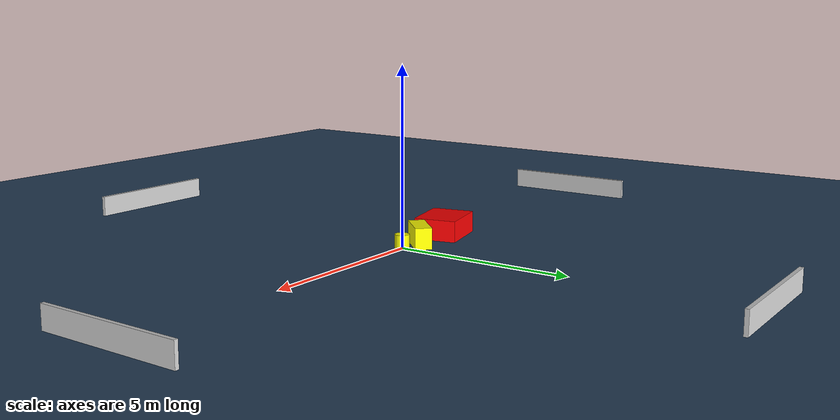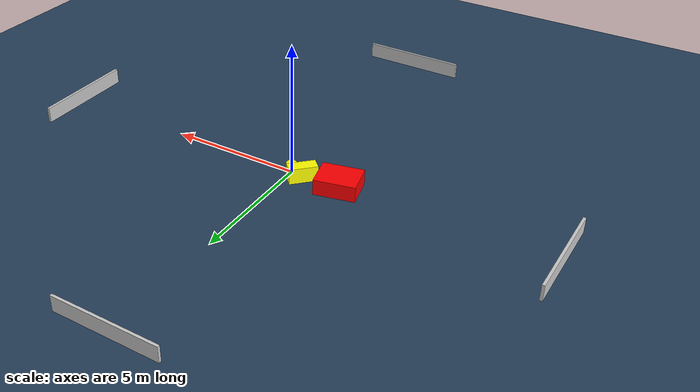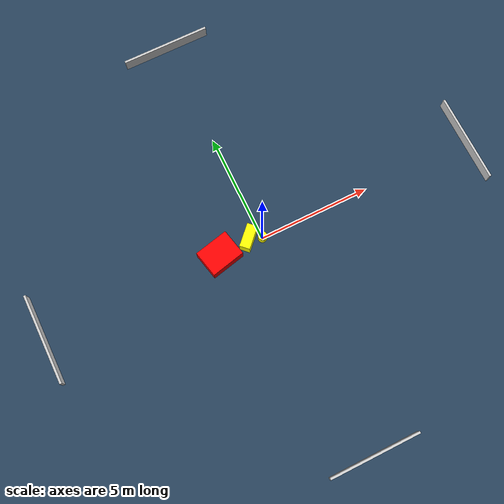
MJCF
<?xml version="1.0" ?>
<mujoco model="generated_environment">
  <option timestep="0.01" integrator="RK4" cone="elliptic"/>
  <default>
    <geom density="1"/>
  </default>
  <asset>
    <texture builtin="gradient" height="3072" name="skybox" rgb1="0.3 0.5 0.7" rgb2="0 0 0" type="skybox" width="512"/>
    <texture builtin="checker" height="300" name="groundplane" rgb1="0.2 0.3 0.4" rgb2="0.1 0.2 0.3" type="2d" width="300"/>
    <material name="groundplane" reflectance="0.2" texrepeat="5 5" texture="groundplane"/>
  </asset>
  <worldbody>
    <light dir="0 0 -1" directional="true" pos="0 0 1.5"/>
    <geom condim="3" friction="0.5 0.005 0.001" material="groundplane" name="floor" pos="0 0 0" size="0 0 0.05" type="plane"/>
    <body name="walls">
      <geom name="wall_1" condim="4" pos="-10.0 0.0 0.3" rgba="0.800000011920929 0.800000011920929 0.800000011920929 1.0" size="0.05 2.0 0.3" type="box"/>
      <geom name="wall_2" condim="4" pos="10.0 0.0 0.3" rgba="0.800000011920929 0.800000011920929 0.800000011920929 1.0" size="0.05 2.0 0.3" type="box"/>
      <geom name="wall_3" condim="4" pos="0.0 -10.0 0.3" rgba="0.800000011920929 0.800000011920929 0.800000011920929 1.0" size="2.0 0.05 0.3" type="box"/>
      <geom name="wall_4" condim="4" pos="0.0 10.0 0.3" rgba="0.800000011920929 0.800000011920929 0.800000011920929 1.0" size="2.0 0.05 0.3" type="box"/>
    </body>
    <body name="robot">
      <joint name="joint_x" type="slide" pos="0 0 0" axis="1 0 0"/>
      <joint name="joint_y" type="slide" pos="0 0 0" axis="0 1 0"/>
      <geom name="robot" type="cylinder" pos="0.0 0.0 0.2" size="0.2 0.2 0.0" mass="5.0" friction="1.0 0.005 0.0001" condim="4" rgba="1.0 1.0 0.0 1.0"/>
    </body>
    <body name="obstacle_1_movable">
      <geom name="obstacle_1_movable" condim="4" pos="-0.5615013274388625 0.2012937137323613 0.3" euler="0 0 225.5480446233718" friction="0.0 0.005 0.001" rgba="1.0 1.0 0.0 1.0" size="0.5337796558431287 0.23088802757437432 0.3" type="box" mass="0.1"/>
      <joint type="free"/>
    </body>
    <body name="obstacle_2_static">
      <geom name="obstacle_2_static" condim="4" pos="-1.9779945634373652 0.06653034359204318 0.3" euler="0 0 282.80429747759416" friction="0.0 0.005 0.001" rgba="1.0 0.0 0.0 1.0" size="0.6048369663862305 0.7709644552143171 0.3" type="box"/>
    </body>
  </worldbody>
  <actuator>
    <motor name="actuator_x" joint="joint_x" gear="1" ctrlrange="-1 1"/>
    <motor name="actuator_y" joint="joint_y" gear="1" ctrlrange="-1 1"/>
  </actuator>
</mujoco>
